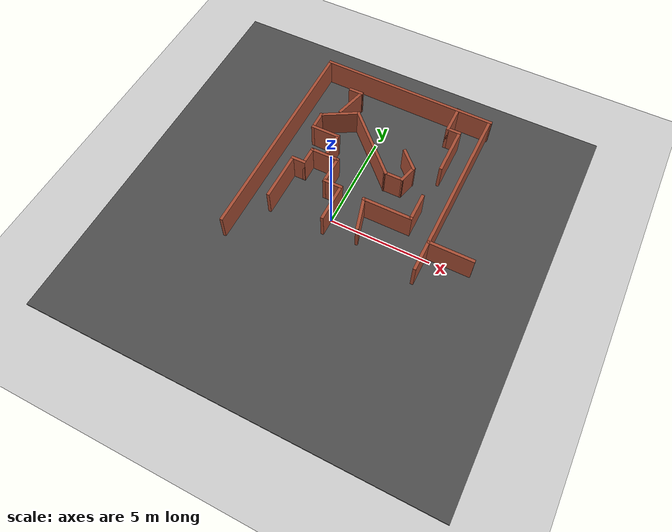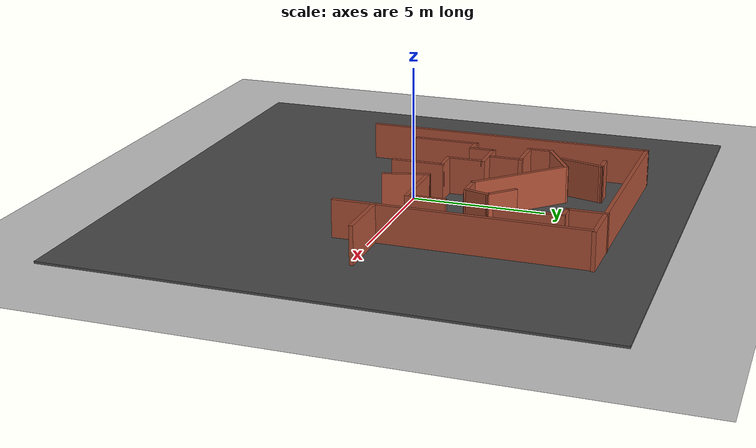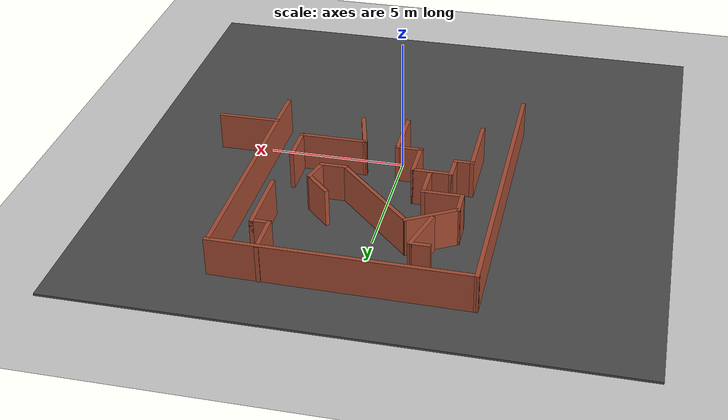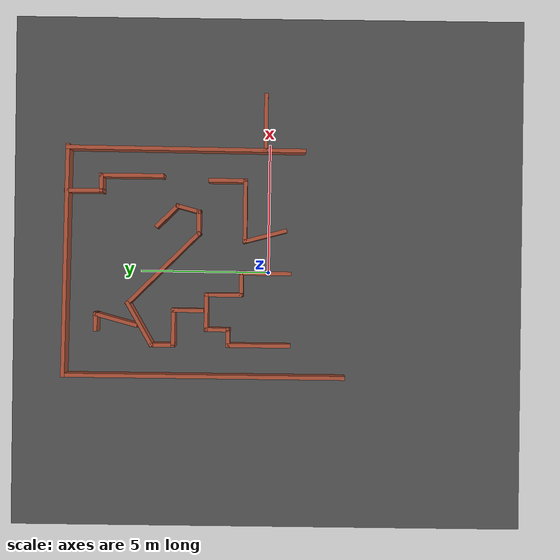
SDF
<sdf version="1.7">
 <world name="expanded_maze_world">
  <model name="ground_plane">
   <static>1</static>
   <link name="link">
    <collision name="collision">
     <geometry><plane><normal>0 0 1</normal><size>100 100</size></plane></geometry>
     <surface>
      <contact><collide_bitmask>65535</collide_bitmask></contact>
      <friction><ode><mu>100</mu><mu2>50</mu2></ode></friction>
     </surface>
    </collision>
    <visual name="visual">
     <cast_shadows>0</cast_shadows>
     <geometry><plane><normal>0 0 1</normal><size>100 100</size></plane></geometry>
     <material>
      <script><uri>file://media/materials/scripts/gazebo.material</uri><name>Gazebo/Grey</name></script>
     </material>
    </visual>
   </link>
  </model>
  <model name="ground_plane">
   <static>1</static>
   <link name="link">
    <collision name="collision">
     <geometry><plane><normal>0 0 1</normal><size>100 100</size></plane></geometry>
     <surface>
      <contact><collide_bitmask>65535</collide_bitmask></contact>
      <friction><ode><mu>100</mu><mu2>50</mu2></ode></friction>
     </surface>
    </collision>
    <visual name="visual">
     <cast_shadows>0</cast_shadows>
     <geometry><plane><normal>0 0 1</normal><size>100 100</size></plane></geometry>
     <material>
      <script><uri>file://media/materials/scripts/gazebo.material</uri><name>Gazebo/Grey</name></script>
     </material>
    </visual>
   </link>
  </model>
  <model name="Search">
   <link name="Wall_23">
    <pose>3.35084 2.83731 0 0 -0 1.56494</pose>
    <visual name="Wall_23_Visual">
     <pose>0 0 1.25 0 -0 0</pose>
     <geometry><box><size>9.28615 0.15 2.5</size></box></geometry>
     <material>
      <script><uri>file://media/materials/scripts/gazebo.material</uri><name>Gazebo/Bricks</name></script>
      <ambient>1 1 1 1</ambient>
      <shader type="pixel"/>
     </material>
     <meta><layer>0</layer></meta>
    </visual>
    <collision name="Wall_23_Collision">
     <pose>0 0 1.25 0 -0 0</pose>
     <geometry><box><size>9.28615 0.15 2.5</size></box></geometry>
     <surface>
      <friction>
       <ode><mu>1</mu><mu2>1</mu2><fdir1>0 0 0</fdir1><slip1>0</slip1><slip2>0</slip2></ode>
       <torsional>
        <coefficient>1</coefficient>
        <patch_radius>0</patch_radius>
        <surface_radius>0</surface_radius>
        <use_patch_radius>1</use_patch_radius>
        <ode><slip>0</slip></ode>
       </torsional>
      </friction>
      <bounce><restitution_coefficient>0</restitution_coefficient><threshold>1e+06</threshold></bounce>
      <contact>
       <collide_without_contact>0</collide_without_contact>
       <collide_without_contact_bitmask>1</collide_without_contact_bitmask>
       <collide_bitmask>1</collide_bitmask>
       <ode>
        <soft_cfm>0</soft_cfm>
        <soft_erp>0.2</soft_erp>
        <kp>1e+13</kp>
        <kd>1</kd>
        <max_vel>0.01</max_vel>
        <min_depth>0</min_depth>
       </ode>
       <bullet>
        <split_impulse>1</split_impulse>
        <split_impulse_penetration_threshold>-0.01</split_impulse_penetration_threshold>
        <soft_cfm>0</soft_cfm>
        <soft_erp>0.2</soft_erp>
        <kp>1e+13</kp>
        <kd>1</kd>
       </bullet>
      </contact>
     </surface>
    </collision>
   </link>
   <link name="Wall_24">
    <pose>-1.0119 7.4588 0 0 -0 3.12955</pose>
    <visual name="Wall_24_Visual">
     <pose>0 0 1.25 0 -0 0</pose>
     <geometry><box><size>9.03663 0.15 2.5</size></box></geometry>
     <material>
      <script><uri>file://media/materials/scripts/gazebo.material</uri><name>Gazebo/Bricks</name></script>
      <ambient>1 1 1 1</ambient>
      <shader type="pixel"/>
     </material>
     <meta><layer>0</layer></meta>
    </visual>
    <collision name="Wall_24_Collision">
     <pose>0 0 1.25 0 -0 0</pose>
     <geometry><box><size>9.03663 0.15 2.5</size></box></geometry>
     <surface>
      <friction>
       <ode><mu>1</mu><mu2>1</mu2><fdir1>0 0 0</fdir1><slip1>0</slip1><slip2>0</slip2></ode>
       <torsional>
        <coefficient>1</coefficient>
        <patch_radius>0</patch_radius>
        <surface_radius>0</surface_radius>
        <use_patch_radius>1</use_patch_radius>
        <ode><slip>0</slip></ode>
       </torsional>
      </friction>
      <bounce><restitution_coefficient>0</restitution_coefficient><threshold>1e+06</threshold></bounce>
      <contact>
       <collide_without_contact>0</collide_without_contact>
       <collide_without_contact_bitmask>1</collide_without_contact_bitmask>
       <collide_bitmask>1</collide_bitmask>
       <ode>
        <soft_cfm>0</soft_cfm>
        <soft_erp>0.2</soft_erp>
        <kp>1e+13</kp>
        <kd>1</kd>
        <max_vel>0.01</max_vel>
        <min_depth>0</min_depth>
       </ode>
       <bullet>
        <split_impulse>1</split_impulse>
        <split_impulse_penetration_threshold>-0.01</split_impulse_penetration_threshold>
        <soft_cfm>0</soft_cfm>
        <soft_erp>0.2</soft_erp>
        <kp>1e+13</kp>
        <kd>1</kd>
       </bullet>
      </contact>
     </surface>
    </collision>
   </link>
   <link name="Wall_25">
    <pose>-5.45489 2.08731 0 0 0 -1.5708</pose>
    <visual name="Wall_25_Visual">
     <pose>0 0 1.25 0 -0 0</pose>
     <geometry><box><size>11 0.15 2.5</size></box></geometry>
     <material>
      <script><uri>file://media/materials/scripts/gazebo.material</uri><name>Gazebo/Bricks</name></script>
      <ambient>1 1 1 1</ambient>
      <shader type="pixel"/>
     </material>
     <meta><layer>0</layer></meta>
    </visual>
    <collision name="Wall_25_Collision">
     <pose>0 0 1.25 0 -0 0</pose>
     <geometry><box><size>11 0.15 2.5</size></box></geometry>
     <surface>
      <friction>
       <ode><mu>1</mu><mu2>1</mu2><fdir1>0 0 0</fdir1><slip1>0</slip1><slip2>0</slip2></ode>
       <torsional>
        <coefficient>1</coefficient>
        <patch_radius>0</patch_radius>
        <surface_radius>0</surface_radius>
        <use_patch_radius>1</use_patch_radius>
        <ode><slip>0</slip></ode>
       </torsional>
      </friction>
      <bounce><restitution_coefficient>0</restitution_coefficient><threshold>1e+06</threshold></bounce>
      <contact>
       <collide_without_contact>0</collide_without_contact>
       <collide_without_contact_bitmask>1</collide_without_contact_bitmask>
       <collide_bitmask>1</collide_bitmask>
       <ode>
        <soft_cfm>0</soft_cfm>
        <soft_erp>0.2</soft_erp>
        <kp>1e+13</kp>
        <kd>1</kd>
        <max_vel>0.01</max_vel>
        <min_depth>0</min_depth>
       </ode>
       <bullet>
        <split_impulse>1</split_impulse>
        <split_impulse_penetration_threshold>-0.01</split_impulse_penetration_threshold>
        <soft_cfm>0</soft_cfm>
        <soft_erp>0.2</soft_erp>
        <kp>1e+13</kp>
        <kd>1</kd>
       </bullet>
      </contact>
     </surface>
    </collision>
   </link>
   <link name="Wall_28">
    <pose>4.41155 -0.253683 0 0 -0 0</pose>
    <visual name="Wall_28_Visual">
     <pose>0 0 1.25 0 -0 0</pose>
     <geometry><box><size>2.25 0.15 2.5</size></box></geometry>
     <material>
      <script><uri>file://media/materials/scripts/gazebo.material</uri><name>Gazebo/Bricks</name></script>
      <ambient>1 1 1 1</ambient>
      <shader type="pixel"/>
     </material>
     <meta><layer>0</layer></meta>
    </visual>
    <collision name="Wall_28_Collision">
     <pose>0 0 1.25 0 -0 0</pose>
     <geometry><box><size>2.25 0.15 2.5</size></box></geometry>
     <surface>
      <friction>
       <ode><mu>1</mu><mu2>1</mu2><fdir1>0 0 0</fdir1><slip1>0</slip1><slip2>0</slip2></ode>
       <torsional>
        <coefficient>1</coefficient>
        <patch_radius>0</patch_radius>
        <surface_radius>0</surface_radius>
        <use_patch_radius>1</use_patch_radius>
        <ode><slip>0</slip></ode>
       </torsional>
      </friction>
      <bounce><restitution_coefficient>0</restitution_coefficient><threshold>1e+06</threshold></bounce>
      <contact>
       <collide_without_contact>0</collide_without_contact>
       <collide_without_contact_bitmask>1</collide_without_contact_bitmask>
       <collide_bitmask>1</collide_bitmask>
       <ode>
        <soft_cfm>0</soft_cfm>
        <soft_erp>0.2</soft_erp>
        <kp>1e+13</kp>
        <kd>1</kd>
        <max_vel>0.01</max_vel>
        <min_depth>0</min_depth>
       </ode>
       <bullet>
        <split_impulse>1</split_impulse>
        <split_impulse_penetration_threshold>-0.01</split_impulse_penetration_threshold>
        <soft_cfm>0</soft_cfm>
        <soft_erp>0.2</soft_erp>
        <kp>1e+13</kp>
        <kd>1</kd>
       </bullet>
      </contact>
     </surface>
    </collision>
   </link>
   <link name="Wall_30">
    <pose>-4.2358 -0.041728 0 0 -0 1.5708</pose>
    <visual name="Wall_30_Visual">
     <pose>0 0 1.25 0 -0 0</pose>
     <geometry><box><size>2.5 0.15 2.5</size></box></geometry>
     <material>
      <script><uri>file://media/materials/scripts/gazebo.material</uri><name>Gazebo/Bricks</name></script>
      <ambient>1 1 1 1</ambient>
      <shader type="pixel"/>
     </material>
     <meta><layer>0</layer></meta>
    </visual>
    <collision name="Wall_30_Collision">
     <pose>0 0 1.25 0 -0 0</pose>
     <geometry><box><size>2.5 0.15 2.5</size></box></geometry>
     <surface>
      <friction>
       <ode><mu>1</mu><mu2>1</mu2><fdir1>0 0 0</fdir1><slip1>0</slip1><slip2>0</slip2></ode>
       <torsional>
        <coefficient>1</coefficient>
        <patch_radius>0</patch_radius>
        <surface_radius>0</surface_radius>
        <use_patch_radius>1</use_patch_radius>
        <ode><slip>0</slip></ode>
       </torsional>
      </friction>
      <bounce><restitution_coefficient>0</restitution_coefficient><threshold>1e+06</threshold></bounce>
      <contact>
       <collide_without_contact>0</collide_without_contact>
       <collide_without_contact_bitmask>1</collide_without_contact_bitmask>
       <collide_bitmask>1</collide_bitmask>
       <ode>
        <soft_cfm>0</soft_cfm>
        <soft_erp>0.2</soft_erp>
        <kp>1e+13</kp>
        <kd>1</kd>
        <max_vel>0.01</max_vel>
        <min_depth>0</min_depth>
       </ode>
       <bullet>
        <split_impulse>1</split_impulse>
        <split_impulse_penetration_threshold>-0.01</split_impulse_penetration_threshold>
        <soft_cfm>0</soft_cfm>
        <soft_erp>0.2</soft_erp>
        <kp>1e+13</kp>
        <kd>1</kd>
       </bullet>
      </contact>
     </surface>
    </collision>
   </link>
   <link name="Wall_31">
    <pose>-3.9358 1.13327 0 0 -0 0</pose>
    <visual name="Wall_31_Visual">
     <pose>0 0 1.25 0 -0 0</pose>
     <geometry><box><size>0.75 0.15 2.5</size></box></geometry>
     <material>
      <script><uri>file://media/materials/scripts/gazebo.material</uri><name>Gazebo/Bricks</name></script>
      <ambient>1 1 1 1</ambient>
      <shader type="pixel"/>
     </material>
     <meta><layer>0</layer></meta>
    </visual>
    <collision name="Wall_31_Collision">
     <pose>0 0 1.25 0 -0 0</pose>
     <geometry><box><size>0.75 0.15 2.5</size></box></geometry>
     <surface>
      <friction>
       <ode><mu>1</mu><mu2>1</mu2><fdir1>0 0 0</fdir1><slip1>0</slip1><slip2>0</slip2></ode>
       <torsional>
        <coefficient>1</coefficient>
        <patch_radius>0</patch_radius>
        <surface_radius>0</surface_radius>
        <use_patch_radius>1</use_patch_radius>
        <ode><slip>0</slip></ode>
       </torsional>
      </friction>
      <bounce><restitution_coefficient>0</restitution_coefficient><threshold>1e+06</threshold></bounce>
      <contact>
       <collide_without_contact>0</collide_without_contact>
       <collide_without_contact_bitmask>1</collide_without_contact_bitmask>
       <collide_bitmask>1</collide_bitmask>
       <ode>
        <soft_cfm>0</soft_cfm>
        <soft_erp>0.2</soft_erp>
        <kp>1e+13</kp>
        <kd>1</kd>
        <max_vel>0.01</max_vel>
        <min_depth>0</min_depth>
       </ode>
       <bullet>
        <split_impulse>1</split_impulse>
        <split_impulse_penetration_threshold>-0.01</split_impulse_penetration_threshold>
        <soft_cfm>0</soft_cfm>
        <soft_erp>0.2</soft_erp>
        <kp>1e+13</kp>
        <kd>1</kd>
       </bullet>
      </contact>
     </surface>
    </collision>
   </link>
   <link name="Wall_32">
    <pose>-3.6358 1.55827 0 0 -0 1.5708</pose>
    <visual name="Wall_32_Visual">
     <pose>0 0 1.25 0 -0 0</pose>
     <geometry><box><size>1 0.15 2.5</size></box></geometry>
     <material>
      <script><uri>file://media/materials/scripts/gazebo.material</uri><name>Gazebo/Bricks</name></script>
      <ambient>1 1 1 1</ambient>
      <shader type="pixel"/>
     </material>
     <meta><layer>0</layer></meta>
    </visual>
    <collision name="Wall_32_Collision">
     <pose>0 0 1.25 0 -0 0</pose>
     <geometry><box><size>1 0.15 2.5</size></box></geometry>
     <surface>
      <friction>
       <ode><mu>1</mu><mu2>1</mu2><fdir1>0 0 0</fdir1><slip1>0</slip1><slip2>0</slip2></ode>
       <torsional>
        <coefficient>1</coefficient>
        <patch_radius>0</patch_radius>
        <surface_radius>0</surface_radius>
        <use_patch_radius>1</use_patch_radius>
        <ode><slip>0</slip></ode>
       </torsional>
      </friction>
      <bounce><restitution_coefficient>0</restitution_coefficient><threshold>1e+06</threshold></bounce>
      <contact>
       <collide_without_contact>0</collide_without_contact>
       <collide_without_contact_bitmask>1</collide_without_contact_bitmask>
       <collide_bitmask>1</collide_bitmask>
       <ode>
        <soft_cfm>0</soft_cfm>
        <soft_erp>0.2</soft_erp>
        <kp>1e+13</kp>
        <kd>1</kd>
        <max_vel>0.01</max_vel>
        <min_depth>0</min_depth>
       </ode>
       <bullet>
        <split_impulse>1</split_impulse>
        <split_impulse_penetration_threshold>-0.01</split_impulse_penetration_threshold>
        <soft_cfm>0</soft_cfm>
        <soft_erp>0.2</soft_erp>
        <kp>1e+13</kp>
        <kd>1</kd>
       </bullet>
      </contact>
     </surface>
    </collision>
   </link>
   <link name="Wall_33">
    <pose>-2.9608 1.98327 0 0 -0 0</pose>
    <visual name="Wall_33_Visual">
     <pose>0 0 1.25 0 -0 0</pose>
     <geometry><box><size>1.5 0.15 2.5</size></box></geometry>
     <material>
      <script><uri>file://media/materials/scripts/gazebo.material</uri><name>Gazebo/Bricks</name></script>
      <ambient>1 1 1 1</ambient>
      <shader type="pixel"/>
     </material>
     <meta><layer>0</layer></meta>
    </visual>
    <collision name="Wall_33_Collision">
     <pose>0 0 1.25 0 -0 0</pose>
     <geometry><box><size>1.5 0.15 2.5</size></box></geometry>
     <surface>
      <friction>
       <ode><mu>1</mu><mu2>1</mu2><fdir1>0 0 0</fdir1><slip1>0</slip1><slip2>0</slip2></ode>
       <torsional>
        <coefficient>1</coefficient>
        <patch_radius>0</patch_radius>
        <surface_radius>0</surface_radius>
        <use_patch_radius>1</use_patch_radius>
        <ode><slip>0</slip></ode>
       </torsional>
      </friction>
      <bounce><restitution_coefficient>0</restitution_coefficient><threshold>1e+06</threshold></bounce>
      <contact>
       <collide_without_contact>0</collide_without_contact>
       <collide_without_contact_bitmask>1</collide_without_contact_bitmask>
       <collide_bitmask>1</collide_bitmask>
       <ode>
        <soft_cfm>0</soft_cfm>
        <soft_erp>0.2</soft_erp>
        <kp>1e+13</kp>
        <kd>1</kd>
        <max_vel>0.01</max_vel>
        <min_depth>0</min_depth>
       </ode>
       <bullet>
        <split_impulse>1</split_impulse>
        <split_impulse_penetration_threshold>-0.01</split_impulse_penetration_threshold>
        <soft_cfm>0</soft_cfm>
        <soft_erp>0.2</soft_erp>
        <kp>1e+13</kp>
        <kd>1</kd>
       </bullet>
      </contact>
     </surface>
    </collision>
   </link>
   <link name="Wall_34">
    <pose>-2.2858 1.30827 0 0 0 -1.5708</pose>
    <visual name="Wall_34_Visual">
     <pose>0 0 1.25 0 -0 0</pose>
     <geometry><box><size>1.5 0.15 2.5</size></box></geometry>
     <material>
      <script><uri>file://media/materials/scripts/gazebo.material</uri><name>Gazebo/Bricks</name></script>
      <ambient>1 1 1 1</ambient>
      <shader type="pixel"/>
     </material>
     <meta><layer>0</layer></meta>
    </visual>
    <collision name="Wall_34_Collision">
     <pose>0 0 1.25 0 -0 0</pose>
     <geometry><box><size>1.5 0.15 2.5</size></box></geometry>
     <surface>
      <friction>
       <ode><mu>1</mu><mu2>1</mu2><fdir1>0 0 0</fdir1><slip1>0</slip1><slip2>0</slip2></ode>
       <torsional>
        <coefficient>1</coefficient>
        <patch_radius>0</patch_radius>
        <surface_radius>0</surface_radius>
        <use_patch_radius>1</use_patch_radius>
        <ode><slip>0</slip></ode>
       </torsional>
      </friction>
      <bounce><restitution_coefficient>0</restitution_coefficient><threshold>1e+06</threshold></bounce>
      <contact>
       <collide_without_contact>0</collide_without_contact>
       <collide_without_contact_bitmask>1</collide_without_contact_bitmask>
       <collide_bitmask>1</collide_bitmask>
       <ode>
        <soft_cfm>0</soft_cfm>
        <soft_erp>0.2</soft_erp>
        <kp>1e+13</kp>
        <kd>1</kd>
        <max_vel>0.01</max_vel>
        <min_depth>0</min_depth>
       </ode>
       <bullet>
        <split_impulse>1</split_impulse>
        <split_impulse_penetration_threshold>-0.01</split_impulse_penetration_threshold>
        <soft_cfm>0</soft_cfm>
        <soft_erp>0.2</soft_erp>
        <kp>1e+13</kp>
        <kd>1</kd>
       </bullet>
      </contact>
     </surface>
    </collision>
   </link>
   <link name="Wall_35">
    <pose>-1.8608 0.633272 0 0 -0 0</pose>
    <visual name="Wall_35_Visual">
     <pose>0 0 1.25 0 -0 0</pose>
     <geometry><box><size>1 0.15 2.5</size></box></geometry>
     <material>
      <script><uri>file://media/materials/scripts/gazebo.material</uri><name>Gazebo/Bricks</name></script>
      <ambient>1 1 1 1</ambient>
      <shader type="pixel"/>
     </material>
     <meta><layer>0</layer></meta>
    </visual>
    <collision name="Wall_35_Collision">
     <pose>0 0 1.25 0 -0 0</pose>
     <geometry><box><size>1 0.15 2.5</size></box></geometry>
     <surface>
      <friction>
       <ode><mu>1</mu><mu2>1</mu2><fdir1>0 0 0</fdir1><slip1>0</slip1><slip2>0</slip2></ode>
       <torsional>
        <coefficient>1</coefficient>
        <patch_radius>0</patch_radius>
        <surface_radius>0</surface_radius>
        <use_patch_radius>1</use_patch_radius>
        <ode><slip>0</slip></ode>
       </torsional>
      </friction>
      <bounce><restitution_coefficient>0</restitution_coefficient><threshold>1e+06</threshold></bounce>
      <contact>
       <collide_without_contact>0</collide_without_contact>
       <collide_without_contact_bitmask>1</collide_without_contact_bitmask>
       <collide_bitmask>1</collide_bitmask>
       <ode>
        <soft_cfm>0</soft_cfm>
        <soft_erp>0.2</soft_erp>
        <kp>1e+13</kp>
        <kd>1</kd>
        <max_vel>0.01</max_vel>
        <min_depth>0</min_depth>
       </ode>
       <bullet>
        <split_impulse>1</split_impulse>
        <split_impulse_penetration_threshold>-0.01</split_impulse_penetration_threshold>
        <soft_cfm>0</soft_cfm>
        <soft_erp>0.2</soft_erp>
        <kp>1e+13</kp>
        <kd>1</kd>
       </bullet>
      </contact>
     </surface>
    </collision>
   </link>
   <link name="Wall_36">
    <pose>-1.4358 -0.291728 0 0 0 -1.5708</pose>
    <visual name="Wall_36_Visual">
     <pose>0 0 1.25 0 -0 0</pose>
     <geometry><box><size>2 0.15 2.5</size></box></geometry>
     <material>
      <script><uri>file://media/materials/scripts/gazebo.material</uri><name>Gazebo/Bricks</name></script>
      <ambient>1 1 1 1</ambient>
      <shader type="pixel"/>
     </material>
     <meta><layer>0</layer></meta>
    </visual>
    <collision name="Wall_36_Collision">
     <pose>0 0 1.25 0 -0 0</pose>
     <geometry><box><size>2 0.15 2.5</size></box></geometry>
     <surface>
      <friction>
       <ode><mu>1</mu><mu2>1</mu2><fdir1>0 0 0</fdir1><slip1>0</slip1><slip2>0</slip2></ode>
       <torsional>
        <coefficient>1</coefficient>
        <patch_radius>0</patch_radius>
        <surface_radius>0</surface_radius>
        <use_patch_radius>1</use_patch_radius>
        <ode><slip>0</slip></ode>
       </torsional>
      </friction>
      <bounce><restitution_coefficient>0</restitution_coefficient><threshold>1e+06</threshold></bounce>
      <contact>
       <collide_without_contact>0</collide_without_contact>
       <collide_without_contact_bitmask>1</collide_without_contact_bitmask>
       <collide_bitmask>1</collide_bitmask>
       <ode>
        <soft_cfm>0</soft_cfm>
        <soft_erp>0.2</soft_erp>
        <kp>1e+13</kp>
        <kd>1</kd>
        <max_vel>0.01</max_vel>
        <min_depth>0</min_depth>
       </ode>
       <bullet>
        <split_impulse>1</split_impulse>
        <split_impulse_penetration_threshold>-0.01</split_impulse_penetration_threshold>
        <soft_cfm>0</soft_cfm>
        <soft_erp>0.2</soft_erp>
        <kp>1e+13</kp>
        <kd>1</kd>
       </bullet>
      </contact>
     </surface>
    </collision>
   </link>
   <link name="Wall_40">
    <pose>-2.89824 2.70393 0 0 -0 1.5708</pose>
    <visual name="Wall_40_Visual">
     <pose>0 0 1.25 0 -0 0</pose>
     <geometry><box><size>1.25 0.15 2.5</size></box></geometry>
     <material>
      <script><uri>file://media/materials/scripts/gazebo.material</uri><name>Gazebo/Bricks</name></script>
      <ambient>1 1 1 1</ambient>
      <shader type="pixel"/>
     </material>
     <meta><layer>0</layer></meta>
    </visual>
    <collision name="Wall_40_Collision">
     <pose>0 0 1.25 0 -0 0</pose>
     <geometry><box><size>1.25 0.15 2.5</size></box></geometry>
     <surface>
      <friction>
       <ode><mu>1</mu><mu2>1</mu2><fdir1>0 0 0</fdir1><slip1>0</slip1><slip2>0</slip2></ode>
       <torsional>
        <coefficient>1</coefficient>
        <patch_radius>0</patch_radius>
        <surface_radius>0</surface_radius>
        <use_patch_radius>1</use_patch_radius>
        <ode><slip>0</slip></ode>
       </torsional>
      </friction>
      <bounce><restitution_coefficient>0</restitution_coefficient><threshold>1e+06</threshold></bounce>
      <contact>
       <collide_without_contact>0</collide_without_contact>
       <collide_without_contact_bitmask>1</collide_without_contact_bitmask>
       <collide_bitmask>1</collide_bitmask>
       <ode>
        <soft_cfm>0</soft_cfm>
        <soft_erp>0.2</soft_erp>
        <kp>1e+13</kp>
        <kd>1</kd>
        <max_vel>0.01</max_vel>
        <min_depth>0</min_depth>
       </ode>
       <bullet>
        <split_impulse>1</split_impulse>
        <split_impulse_penetration_threshold>-0.01</split_impulse_penetration_threshold>
        <soft_cfm>0</soft_cfm>
        <soft_erp>0.2</soft_erp>
        <kp>1e+13</kp>
        <kd>1</kd>
       </bullet>
      </contact>
     </surface>
    </collision>
   </link>
   <link name="Wall_41">
    <pose>-3.57324 3.25393 0 0 -0 3.14159</pose>
    <visual name="Wall_41_Visual">
     <pose>0 0 1.25 0 -0 0</pose>
     <geometry><box><size>1.5 0.15 2.5</size></box></geometry>
     <material>
      <script><uri>file://media/materials/scripts/gazebo.material</uri><name>Gazebo/Bricks</name></script>
      <ambient>1 1 1 1</ambient>
      <shader type="pixel"/>
     </material>
     <meta><layer>0</layer></meta>
    </visual>
    <collision name="Wall_41_Collision">
     <pose>0 0 1.25 0 -0 0</pose>
     <geometry><box><size>1.5 0.15 2.5</size></box></geometry>
     <surface>
      <friction>
       <ode><mu>1</mu><mu2>1</mu2><fdir1>0 0 0</fdir1><slip1>0</slip1><slip2>0</slip2></ode>
       <torsional>
        <coefficient>1</coefficient>
        <patch_radius>0</patch_radius>
        <surface_radius>0</surface_radius>
        <use_patch_radius>1</use_patch_radius>
        <ode><slip>0</slip></ode>
       </torsional>
      </friction>
      <bounce><restitution_coefficient>0</restitution_coefficient><threshold>1e+06</threshold></bounce>
      <contact>
       <collide_without_contact>0</collide_without_contact>
       <collide_without_contact_bitmask>1</collide_without_contact_bitmask>
       <collide_bitmask>1</collide_bitmask>
       <ode>
        <soft_cfm>0</soft_cfm>
        <soft_erp>0.2</soft_erp>
        <kp>1e+13</kp>
        <kd>1</kd>
        <max_vel>0.01</max_vel>
        <min_depth>0</min_depth>
       </ode>
       <bullet>
        <split_impulse>1</split_impulse>
        <split_impulse_penetration_threshold>-0.01</split_impulse_penetration_threshold>
        <soft_cfm>0</soft_cfm>
        <soft_erp>0.2</soft_erp>
        <kp>1e+13</kp>
        <kd>1</kd>
       </bullet>
      </contact>
     </surface>
    </collision>
   </link>
   <link name="Wall_42">
    <pose>-4.24824 3.67893 0 0 -0 1.5708</pose>
    <visual name="Wall_42_Visual">
     <pose>0 0 1.25 0 -0 0</pose>
     <geometry><box><size>1 0.15 2.5</size></box></geometry>
     <material>
      <script><uri>file://media/materials/scripts/gazebo.material</uri><name>Gazebo/Bricks</name></script>
      <ambient>1 1 1 1</ambient>
      <shader type="pixel"/>
     </material>
     <meta><layer>0</layer></meta>
    </visual>
    <collision name="Wall_42_Collision">
     <pose>0 0 1.25 0 -0 0</pose>
     <geometry><box><size>1 0.15 2.5</size></box></geometry>
     <surface>
      <friction>
       <ode><mu>1</mu><mu2>1</mu2><fdir1>0 0 0</fdir1><slip1>0</slip1><slip2>0</slip2></ode>
       <torsional>
        <coefficient>1</coefficient>
        <patch_radius>0</patch_radius>
        <surface_radius>0</surface_radius>
        <use_patch_radius>1</use_patch_radius>
        <ode><slip>0</slip></ode>
       </torsional>
      </friction>
      <bounce><restitution_coefficient>0</restitution_coefficient><threshold>1e+06</threshold></bounce>
      <contact>
       <collide_without_contact>0</collide_without_contact>
       <collide_without_contact_bitmask>1</collide_without_contact_bitmask>
       <collide_bitmask>1</collide_bitmask>
       <ode>
        <soft_cfm>0</soft_cfm>
        <soft_erp>0.2</soft_erp>
        <kp>1e+13</kp>
        <kd>1</kd>
        <max_vel>0.01</max_vel>
        <min_depth>0</min_depth>
       </ode>
       <bullet>
        <split_impulse>1</split_impulse>
        <split_impulse_penetration_threshold>-0.01</split_impulse_penetration_threshold>
        <soft_cfm>0</soft_cfm>
        <soft_erp>0.2</soft_erp>
        <kp>1e+13</kp>
        <kd>1</kd>
       </bullet>
      </contact>
     </surface>
    </collision>
   </link>
   <link name="Wall_43">
    <pose>-3.44716 4.56643 0 0 -0 0.523599</pose>
    <visual name="Wall_43_Visual">
     <pose>0 0 1.25 0 -0 0</pose>
     <geometry><box><size>2 0.15 2.5</size></box></geometry>
     <material>
      <script><uri>file://media/materials/scripts/gazebo.material</uri><name>Gazebo/Bricks</name></script>
      <ambient>1 1 1 1</ambient>
      <shader type="pixel"/>
     </material>
     <meta><layer>0</layer></meta>
    </visual>
    <collision name="Wall_43_Collision">
     <pose>0 0 1.25 0 -0 0</pose>
     <geometry><box><size>2 0.15 2.5</size></box></geometry>
     <surface>
      <friction>
       <ode><mu>1</mu><mu2>1</mu2><fdir1>0 0 0</fdir1><slip1>0</slip1><slip2>0</slip2></ode>
       <torsional>
        <coefficient>1</coefficient>
        <patch_radius>0</patch_radius>
        <surface_radius>0</surface_radius>
        <use_patch_radius>1</use_patch_radius>
        <ode><slip>0</slip></ode>
       </torsional>
      </friction>
      <bounce><restitution_coefficient>0</restitution_coefficient><threshold>1e+06</threshold></bounce>
      <contact>
       <collide_without_contact>0</collide_without_contact>
       <collide_without_contact_bitmask>1</collide_without_contact_bitmask>
       <collide_bitmask>1</collide_bitmask>
       <ode>
        <soft_cfm>0</soft_cfm>
        <soft_erp>0.2</soft_erp>
        <kp>1e+13</kp>
        <kd>1</kd>
        <max_vel>0.01</max_vel>
        <min_depth>0</min_depth>
       </ode>
       <bullet>
        <split_impulse>1</split_impulse>
        <split_impulse_penetration_threshold>-0.01</split_impulse_penetration_threshold>
        <soft_cfm>0</soft_cfm>
        <soft_erp>0.2</soft_erp>
        <kp>1e+13</kp>
        <kd>1</kd>
       </bullet>
      </contact>
     </surface>
    </collision>
   </link>
   <link name="Wall_44">
    <pose>-1.28491 3.66775 0 0 0 -0.785398</pose>
    <visual name="Wall_44_Visual">
     <pose>0 0 1.25 0 -0 0</pose>
     <geometry><box><size>4 0.15 2.5</size></box></geometry>
     <material>
      <script><uri>file://media/materials/scripts/gazebo.material</uri><name>Gazebo/Bricks</name></script>
      <ambient>1 1 1 1</ambient>
      <shader type="pixel"/>
     </material>
     <meta><layer>0</layer></meta>
    </visual>
    <collision name="Wall_44_Collision">
     <pose>0 0 1.25 0 -0 0</pose>
     <geometry><box><size>4 0.15 2.5</size></box></geometry>
     <surface>
      <friction>
       <ode><mu>1</mu><mu2>1</mu2><fdir1>0 0 0</fdir1><slip1>0</slip1><slip2>0</slip2></ode>
       <torsional>
        <coefficient>1</coefficient>
        <patch_radius>0</patch_radius>
        <surface_radius>0</surface_radius>
        <use_patch_radius>1</use_patch_radius>
        <ode><slip>0</slip></ode>
       </torsional>
      </friction>
      <bounce><restitution_coefficient>0</restitution_coefficient><threshold>1e+06</threshold></bounce>
      <contact>
       <collide_without_contact>0</collide_without_contact>
       <collide_without_contact_bitmask>1</collide_without_contact_bitmask>
       <collide_bitmask>1</collide_bitmask>
       <ode>
        <soft_cfm>0</soft_cfm>
        <soft_erp>0.2</soft_erp>
        <kp>1e+13</kp>
        <kd>1</kd>
        <max_vel>0.01</max_vel>
        <min_depth>0</min_depth>
       </ode>
       <bullet>
        <split_impulse>1</split_impulse>
        <split_impulse_penetration_threshold>-0.01</split_impulse_penetration_threshold>
        <soft_cfm>0</soft_cfm>
        <soft_erp>0.2</soft_erp>
        <kp>1e+13</kp>
        <kd>1</kd>
       </bullet>
      </contact>
     </surface>
    </collision>
   </link>
   <link name="Wall_45">
    <pose>0.501271 2.30657 0 0 -0 0</pose>
    <visual name="Wall_45_Visual">
     <pose>0 0 1.25 0 -0 0</pose>
     <geometry><box><size>1 0.15 2.5</size></box></geometry>
     <material>
      <script><uri>file://media/materials/scripts/gazebo.material</uri><name>Gazebo/Bricks</name></script>
      <ambient>1 1 1 1</ambient>
      <shader type="pixel"/>
     </material>
     <meta><layer>0</layer></meta>
    </visual>
    <collision name="Wall_45_Collision">
     <pose>0 0 1.25 0 -0 0</pose>
     <geometry><box><size>1 0.15 2.5</size></box></geometry>
     <surface>
      <friction>
       <ode><mu>1</mu><mu2>1</mu2><fdir1>0 0 0</fdir1><slip1>0</slip1><slip2>0</slip2></ode>
       <torsional>
        <coefficient>1</coefficient>
        <patch_radius>0</patch_radius>
        <surface_radius>0</surface_radius>
        <use_patch_radius>1</use_patch_radius>
        <ode><slip>0</slip></ode>
       </torsional>
      </friction>
      <bounce><restitution_coefficient>0</restitution_coefficient><threshold>1e+06</threshold></bounce>
      <contact>
       <collide_without_contact>0</collide_without_contact>
       <collide_without_contact_bitmask>1</collide_without_contact_bitmask>
       <collide_bitmask>1</collide_bitmask>
       <ode>
        <soft_cfm>0</soft_cfm>
        <soft_erp>0.2</soft_erp>
        <kp>1e+13</kp>
        <kd>1</kd>
        <max_vel>0.01</max_vel>
        <min_depth>0</min_depth>
       </ode>
       <bullet>
        <split_impulse>1</split_impulse>
        <split_impulse_penetration_threshold>-0.01</split_impulse_penetration_threshold>
        <soft_cfm>0</soft_cfm>
        <soft_erp>0.2</soft_erp>
        <kp>1e+13</kp>
        <kd>1</kd>
       </bullet>
      </contact>
     </surface>
    </collision>
   </link>
   <link name="Wall_46">
    <pose>1.03627 2.71709 0 0 -0 1.309</pose>
    <visual name="Wall_46_Visual">
     <pose>0 0 1.25 0 -0 0</pose>
     <geometry><box><size>1 0.15 2.5</size></box></geometry>
     <material>
      <script><uri>file://media/materials/scripts/gazebo.material</uri><name>Gazebo/Bricks</name></script>
      <ambient>1 1 1 1</ambient>
      <shader type="pixel"/>
     </material>
     <meta><layer>0</layer></meta>
    </visual>
    <collision name="Wall_46_Collision">
     <pose>0 0 1.25 0 -0 0</pose>
     <geometry><box><size>1 0.15 2.5</size></box></geometry>
     <surface>
      <friction>
       <ode><mu>1</mu><mu2>1</mu2><fdir1>0 0 0</fdir1><slip1>0</slip1><slip2>0</slip2></ode>
       <torsional>
        <coefficient>1</coefficient>
        <patch_radius>0</patch_radius>
        <surface_radius>0</surface_radius>
        <use_patch_radius>1</use_patch_radius>
        <ode><slip>0</slip></ode>
       </torsional>
      </friction>
      <bounce><restitution_coefficient>0</restitution_coefficient><threshold>1e+06</threshold></bounce>
      <contact>
       <collide_without_contact>0</collide_without_contact>
       <collide_without_contact_bitmask>1</collide_without_contact_bitmask>
       <collide_bitmask>1</collide_bitmask>
       <ode>
        <soft_cfm>0</soft_cfm>
        <soft_erp>0.2</soft_erp>
        <kp>1e+13</kp>
        <kd>1</kd>
        <max_vel>0.01</max_vel>
        <min_depth>0</min_depth>
       </ode>
       <bullet>
        <split_impulse>1</split_impulse>
        <split_impulse_penetration_threshold>-0.01</split_impulse_penetration_threshold>
        <soft_cfm>0</soft_cfm>
        <soft_erp>0.2</soft_erp>
        <kp>1e+13</kp>
        <kd>1</kd>
       </bullet>
      </contact>
     </surface>
    </collision>
   </link>
   <link name="Wall_47">
    <pose>0.757358 3.51651 0 0 -0 2.35619</pose>
    <visual name="Wall_47_Visual">
     <pose>0 0 1.25 0 -0 0</pose>
     <geometry><box><size>1.25 0.15 2.5</size></box></geometry>
     <material>
      <script><uri>file://media/materials/scripts/gazebo.material</uri><name>Gazebo/Bricks</name></script>
      <ambient>1 1 1 1</ambient>
      <shader type="pixel"/>
     </material>
     <meta><layer>0</layer></meta>
    </visual>
    <collision name="Wall_47_Collision">
     <pose>0 0 1.25 0 -0 0</pose>
     <geometry><box><size>1.25 0.15 2.5</size></box></geometry>
     <surface>
      <friction>
       <ode><mu>1</mu><mu2>1</mu2><fdir1>0 0 0</fdir1><slip1>0</slip1><slip2>0</slip2></ode>
       <torsional>
        <coefficient>1</coefficient>
        <patch_radius>0</patch_radius>
        <surface_radius>0</surface_radius>
        <use_patch_radius>1</use_patch_radius>
        <ode><slip>0</slip></ode>
       </torsional>
      </friction>
      <bounce><restitution_coefficient>0</restitution_coefficient><threshold>1e+06</threshold></bounce>
      <contact>
       <collide_without_contact>0</collide_without_contact>
       <collide_without_contact_bitmask>1</collide_without_contact_bitmask>
       <collide_bitmask>1</collide_bitmask>
       <ode>
        <soft_cfm>0</soft_cfm>
        <soft_erp>0.2</soft_erp>
        <kp>1e+13</kp>
        <kd>1</kd>
        <max_vel>0.01</max_vel>
        <min_depth>0</min_depth>
       </ode>
       <bullet>
        <split_impulse>1</split_impulse>
        <split_impulse_penetration_threshold>-0.01</split_impulse_penetration_threshold>
        <soft_cfm>0</soft_cfm>
        <soft_erp>0.2</soft_erp>
        <kp>1e+13</kp>
        <kd>1</kd>
       </bullet>
      </contact>
     </surface>
    </collision>
   </link>
   <link name="Wall_52">
    <pose>-3.27971 5.49479 0 0 -0 1.309</pose>
    <visual name="Wall_52_Visual">
     <pose>0 0 1.25 0 -0 0</pose>
     <geometry><box><size>1.75 0.15 2.5</size></box></geometry>
     <material>
      <script><uri>file://media/materials/scripts/gazebo.material</uri><name>Gazebo/Bricks</name></script>
      <ambient>1 1 1 1</ambient>
      <shader type="pixel"/>
     </material>
     <meta><layer>0</layer></meta>
    </visual>
    <collision name="Wall_52_Collision">
     <pose>0 0 1.25 0 -0 0</pose>
     <geometry><box><size>1.75 0.15 2.5</size></box></geometry>
     <surface>
      <friction>
       <ode><mu>1</mu><mu2>1</mu2><fdir1>0 0 0</fdir1><slip1>0</slip1><slip2>0</slip2></ode>
       <torsional>
        <coefficient>1</coefficient>
        <patch_radius>0</patch_radius>
        <surface_radius>0</surface_radius>
        <use_patch_radius>1</use_patch_radius>
        <ode><slip>0</slip></ode>
       </torsional>
      </friction>
      <bounce><restitution_coefficient>0</restitution_coefficient><threshold>1e+06</threshold></bounce>
      <contact>
       <collide_without_contact>0</collide_without_contact>
       <collide_without_contact_bitmask>1</collide_without_contact_bitmask>
       <collide_bitmask>1</collide_bitmask>
       <ode>
        <soft_cfm>0</soft_cfm>
        <soft_erp>0.2</soft_erp>
        <kp>1e+13</kp>
        <kd>1</kd>
        <max_vel>0.01</max_vel>
        <min_depth>0</min_depth>
       </ode>
       <bullet>
        <split_impulse>1</split_impulse>
        <split_impulse_penetration_threshold>-0.01</split_impulse_penetration_threshold>
        <soft_cfm>0</soft_cfm>
        <soft_erp>0.2</soft_erp>
        <kp>1e+13</kp>
        <kd>1</kd>
       </bullet>
      </contact>
     </surface>
    </collision>
   </link>
   <link name="Wall_54">
    <pose>-3.37265 6.26753 0 0 -0 3.14159</pose>
    <visual name="Wall_54_Visual">
     <pose>0 0 1.25 0 -0 0</pose>
     <geometry><box><size>0.75 0.15 2.5</size></box></geometry>
     <material>
      <script><uri>file://media/materials/scripts/gazebo.material</uri><name>Gazebo/Bricks</name></script>
      <ambient>1 1 1 1</ambient>
      <shader type="pixel"/>
     </material>
     <meta><layer>0</layer></meta>
    </visual>
    <collision name="Wall_54_Collision">
     <pose>0 0 1.25 0 -0 0</pose>
     <geometry><box><size>0.75 0.15 2.5</size></box></geometry>
     <surface>
      <friction>
       <ode><mu>1</mu><mu2>1</mu2><fdir1>0 0 0</fdir1><slip1>0</slip1><slip2>0</slip2></ode>
       <torsional>
        <coefficient>1</coefficient>
        <patch_radius>0</patch_radius>
        <surface_radius>0</surface_radius>
        <use_patch_radius>1</use_patch_radius>
        <ode><slip>0</slip></ode>
       </torsional>
      </friction>
      <bounce><restitution_coefficient>0</restitution_coefficient><threshold>1e+06</threshold></bounce>
      <contact>
       <collide_without_contact>0</collide_without_contact>
       <collide_without_contact_bitmask>1</collide_without_contact_bitmask>
       <collide_bitmask>1</collide_bitmask>
       <ode>
        <soft_cfm>0</soft_cfm>
        <soft_erp>0.2</soft_erp>
        <kp>1e+13</kp>
        <kd>1</kd>
        <max_vel>0.01</max_vel>
        <min_depth>0</min_depth>
       </ode>
       <bullet>
        <split_impulse>1</split_impulse>
        <split_impulse_penetration_threshold>-0.01</split_impulse_penetration_threshold>
        <soft_cfm>0</soft_cfm>
        <soft_erp>0.2</soft_erp>
        <kp>1e+13</kp>
        <kd>1</kd>
       </bullet>
      </contact>
     </surface>
    </collision>
   </link>
   <link name="Wall_68">
    <pose>0.006991 -0.256592 0 0 -0 1.8326</pose>
    <visual name="Wall_68_Visual">
     <pose>0 0 1.25 0 -0 0</pose>
     <geometry><box><size>1.75 0.15 2.5</size></box></geometry>
     <material>
      <script><uri>file://media/materials/scripts/gazebo.material</uri><name>Gazebo/Bricks</name></script>
      <ambient>1 1 1 1</ambient>
      <shader type="pixel"/>
     </material>
     <meta><layer>0</layer></meta>
    </visual>
    <collision name="Wall_68_Collision">
     <pose>0 0 1.25 0 -0 0</pose>
     <geometry><box><size>1.75 0.15 2.5</size></box></geometry>
     <surface>
      <friction>
       <ode><mu>1</mu><mu2>1</mu2><fdir1>0 0 0</fdir1><slip1>0</slip1><slip2>0</slip2></ode>
       <torsional>
        <coefficient>1</coefficient>
        <patch_radius>0</patch_radius>
        <surface_radius>0</surface_radius>
        <use_patch_radius>1</use_patch_radius>
        <ode><slip>0</slip></ode>
       </torsional>
      </friction>
      <bounce><restitution_coefficient>0</restitution_coefficient><threshold>1e+06</threshold></bounce>
      <contact>
       <collide_without_contact>0</collide_without_contact>
       <collide_without_contact_bitmask>1</collide_without_contact_bitmask>
       <collide_bitmask>1</collide_bitmask>
       <ode>
        <soft_cfm>0</soft_cfm>
        <soft_erp>0.2</soft_erp>
        <kp>1e+13</kp>
        <kd>1</kd>
        <max_vel>0.01</max_vel>
        <min_depth>0</min_depth>
       </ode>
       <bullet>
        <split_impulse>1</split_impulse>
        <split_impulse_penetration_threshold>-0.01</split_impulse_penetration_threshold>
        <soft_cfm>0</soft_cfm>
        <soft_erp>0.2</soft_erp>
        <kp>1e+13</kp>
        <kd>1</kd>
       </bullet>
      </contact>
     </surface>
    </collision>
   </link>
   <link name="Wall_69">
    <pose>0.974936 0.516149 0 0 -0 0</pose>
    <visual name="Wall_69_Visual">
     <pose>0 0 1.25 0 -0 0</pose>
     <geometry><box><size>2.5 0.15 2.5</size></box></geometry>
     <material>
      <script><uri>file://media/materials/scripts/gazebo.material</uri><name>Gazebo/Bricks</name></script>
      <ambient>1 1 1 1</ambient>
      <shader type="pixel"/>
     </material>
     <meta><layer>0</layer></meta>
    </visual>
    <collision name="Wall_69_Collision">
     <pose>0 0 1.25 0 -0 0</pose>
     <geometry><box><size>2.5 0.15 2.5</size></box></geometry>
     <surface>
      <friction>
       <ode><mu>1</mu><mu2>1</mu2><fdir1>0 0 0</fdir1><slip1>0</slip1><slip2>0</slip2></ode>
       <torsional>
        <coefficient>1</coefficient>
        <patch_radius>0</patch_radius>
        <surface_radius>0</surface_radius>
        <use_patch_radius>1</use_patch_radius>
        <ode><slip>0</slip></ode>
       </torsional>
      </friction>
      <bounce><restitution_coefficient>0</restitution_coefficient><threshold>1e+06</threshold></bounce>
      <contact>
       <collide_without_contact>0</collide_without_contact>
       <collide_without_contact_bitmask>1</collide_without_contact_bitmask>
       <collide_bitmask>1</collide_bitmask>
       <ode>
        <soft_cfm>0</soft_cfm>
        <soft_erp>0.2</soft_erp>
        <kp>1e+13</kp>
        <kd>1</kd>
        <max_vel>0.01</max_vel>
        <min_depth>0</min_depth>
       </ode>
       <bullet>
        <split_impulse>1</split_impulse>
        <split_impulse_penetration_threshold>-0.01</split_impulse_penetration_threshold>
        <soft_cfm>0</soft_cfm>
        <soft_erp>0.2</soft_erp>
        <kp>1e+13</kp>
        <kd>1</kd>
       </bullet>
      </contact>
     </surface>
    </collision>
   </link>
   <link name="Wall_70">
    <pose>2.14994 1.19115 0 0 -0 1.5708</pose>
    <visual name="Wall_70_Visual">
     <pose>0 0 1.25 0 -0 0</pose>
     <geometry><box><size>1.5 0.15 2.5</size></box></geometry>
     <material>
      <script><uri>file://media/materials/scripts/gazebo.material</uri><name>Gazebo/Bricks</name></script>
      <ambient>1 1 1 1</ambient>
      <shader type="pixel"/>
     </material>
     <meta><layer>0</layer></meta>
    </visual>
    <collision name="Wall_70_Collision">
     <pose>0 0 1.25 0 -0 0</pose>
     <geometry><box><size>1.5 0.15 2.5</size></box></geometry>
     <surface>
      <friction>
       <ode><mu>1</mu><mu2>1</mu2><fdir1>0 0 0</fdir1><slip1>0</slip1><slip2>0</slip2></ode>
       <torsional>
        <coefficient>1</coefficient>
        <patch_radius>0</patch_radius>
        <surface_radius>0</surface_radius>
        <use_patch_radius>1</use_patch_radius>
        <ode><slip>0</slip></ode>
       </torsional>
      </friction>
      <bounce><restitution_coefficient>0</restitution_coefficient><threshold>1e+06</threshold></bounce>
      <contact>
       <collide_without_contact>0</collide_without_contact>
       <collide_without_contact_bitmask>1</collide_without_contact_bitmask>
       <collide_bitmask>1</collide_bitmask>
       <ode>
        <soft_cfm>0</soft_cfm>
        <soft_erp>0.2</soft_erp>
        <kp>1e+13</kp>
        <kd>1</kd>
        <max_vel>0.01</max_vel>
        <min_depth>0</min_depth>
       </ode>
       <bullet>
        <split_impulse>1</split_impulse>
        <split_impulse_penetration_threshold>-0.01</split_impulse_penetration_threshold>
        <soft_cfm>0</soft_cfm>
        <soft_erp>0.2</soft_erp>
        <kp>1e+13</kp>
        <kd>1</kd>
       </bullet>
      </contact>
     </surface>
    </collision>
   </link>
   <link name="Wall_72">
    <pose>1.70298 6.77568 0 0 0 -1.5708</pose>
    <visual name="Wall_72_Visual">
     <pose>0 0 1.25 0 -0 0</pose>
     <geometry><box><size>1.5 0.15 2.5</size></box></geometry>
     <material>
      <script><uri>file://media/materials/scripts/gazebo.material</uri><name>Gazebo/Bricks</name></script>
      <ambient>1 1 1 1</ambient>
      <shader type="pixel"/>
     </material>
     <meta><layer>0</layer></meta>
    </visual>
    <collision name="Wall_72_Collision">
     <pose>0 0 1.25 0 -0 0</pose>
     <geometry><box><size>1.5 0.15 2.5</size></box></geometry>
     <surface>
      <friction>
       <ode><mu>1</mu><mu2>1</mu2><fdir1>0 0 0</fdir1><slip1>0</slip1><slip2>0</slip2></ode>
       <torsional>
        <coefficient>1</coefficient>
        <patch_radius>0</patch_radius>
        <surface_radius>0</surface_radius>
        <use_patch_radius>1</use_patch_radius>
        <ode><slip>0</slip></ode>
       </torsional>
      </friction>
      <bounce><restitution_coefficient>0</restitution_coefficient><threshold>1e+06</threshold></bounce>
      <contact>
       <collide_without_contact>0</collide_without_contact>
       <collide_without_contact_bitmask>1</collide_without_contact_bitmask>
       <collide_bitmask>1</collide_bitmask>
       <ode>
        <soft_cfm>0</soft_cfm>
        <soft_erp>0.2</soft_erp>
        <kp>1e+13</kp>
        <kd>1</kd>
        <max_vel>0.01</max_vel>
        <min_depth>0</min_depth>
       </ode>
       <bullet>
        <split_impulse>1</split_impulse>
        <split_impulse_penetration_threshold>-0.01</split_impulse_penetration_threshold>
        <soft_cfm>0</soft_cfm>
        <soft_erp>0.2</soft_erp>
        <kp>1e+13</kp>
        <kd>1</kd>
       </bullet>
      </contact>
     </surface>
    </collision>
   </link>
   <link name="Wall_73">
    <pose>2.00298 6.10068 0 0 -0 0</pose>
    <visual name="Wall_73_Visual">
     <pose>0 0 1.25 0 -0 0</pose>
     <geometry><box><size>0.75 0.15 2.5</size></box></geometry>
     <material>
      <script><uri>file://media/materials/scripts/gazebo.material</uri><name>Gazebo/Bricks</name></script>
      <ambient>1 1 1 1</ambient>
      <shader type="pixel"/>
     </material>
     <meta><layer>0</layer></meta>
    </visual>
    <collision name="Wall_73_Collision">
     <pose>0 0 1.25 0 -0 0</pose>
     <geometry><box><size>0.75 0.15 2.5</size></box></geometry>
     <surface>
      <friction>
       <ode><mu>1</mu><mu2>1</mu2><fdir1>0 0 0</fdir1><slip1>0</slip1><slip2>0</slip2></ode>
       <torsional>
        <coefficient>1</coefficient>
        <patch_radius>0</patch_radius>
        <surface_radius>0</surface_radius>
        <use_patch_radius>1</use_patch_radius>
        <ode><slip>0</slip></ode>
       </torsional>
      </friction>
      <bounce><restitution_coefficient>0</restitution_coefficient><threshold>1e+06</threshold></bounce>
      <contact>
       <collide_without_contact>0</collide_without_contact>
       <collide_without_contact_bitmask>1</collide_without_contact_bitmask>
       <collide_bitmask>1</collide_bitmask>
       <ode>
        <soft_cfm>0</soft_cfm>
        <soft_erp>0.2</soft_erp>
        <kp>1e+13</kp>
        <kd>1</kd>
        <max_vel>0.01</max_vel>
        <min_depth>0</min_depth>
       </ode>
       <bullet>
        <split_impulse>1</split_impulse>
        <split_impulse_penetration_threshold>-0.01</split_impulse_penetration_threshold>
        <soft_cfm>0</soft_cfm>
        <soft_erp>0.2</soft_erp>
        <kp>1e+13</kp>
        <kd>1</kd>
       </bullet>
      </contact>
     </surface>
    </collision>
   </link>
   <link name="Wall_74">
    <pose>2.30298 4.92568 0 0 0 -1.5708</pose>
    <visual name="Wall_74_Visual">
     <pose>0 0 1.25 0 -0 0</pose>
     <geometry><box><size>2.5 0.15 2.5</size></box></geometry>
     <material>
      <script><uri>file://media/materials/scripts/gazebo.material</uri><name>Gazebo/Bricks</name></script>
      <ambient>1 1 1 1</ambient>
      <shader type="pixel"/>
     </material>
     <meta><layer>0</layer></meta>
    </visual>
    <collision name="Wall_74_Collision">
     <pose>0 0 1.25 0 -0 0</pose>
     <geometry><box><size>2.5 0.15 2.5</size></box></geometry>
     <surface>
      <friction>
       <ode><mu>1</mu><mu2>1</mu2><fdir1>0 0 0</fdir1><slip1>0</slip1><slip2>0</slip2></ode>
       <torsional>
        <coefficient>1</coefficient>
        <patch_radius>0</patch_radius>
        <surface_radius>0</surface_radius>
        <use_patch_radius>1</use_patch_radius>
        <ode><slip>0</slip></ode>
       </torsional>
      </friction>
      <bounce><restitution_coefficient>0</restitution_coefficient><threshold>1e+06</threshold></bounce>
      <contact>
       <collide_without_contact>0</collide_without_contact>
       <collide_without_contact_bitmask>1</collide_without_contact_bitmask>
       <collide_bitmask>1</collide_bitmask>
       <ode>
        <soft_cfm>0</soft_cfm>
        <soft_erp>0.2</soft_erp>
        <kp>1e+13</kp>
        <kd>1</kd>
        <max_vel>0.01</max_vel>
        <min_depth>0</min_depth>
       </ode>
       <bullet>
        <split_impulse>1</split_impulse>
        <split_impulse_penetration_threshold>-0.01</split_impulse_penetration_threshold>
        <soft_cfm>0</soft_cfm>
        <soft_erp>0.2</soft_erp>
        <kp>1e+13</kp>
        <kd>1</kd>
       </bullet>
      </contact>
     </surface>
    </collision>
   </link>
   <static>1</static>
   <pose>1.39941 0.42073 -1.04492 0 -0 0</pose>
  </model>
  <model name="asphalt_plane_0">
   <static>1</static>
   <link name="link">
    <collision name="collision"><geometry><box><size>20 20 0.1</size></box></geometry></collision>
    <visual name="visual">
     <cast_shadows>0</cast_shadows>
     <geometry><box><size>20 20 0.1</size></box></geometry>
     <material>
      <script>
       <uri>model://asphalt_plane/materials/scripts</uri>
       <uri>model://asphalt_plane/materials/textures</uri>
       <name>vrc/asphalt</name>
      </script>
     </material>
    </visual>
   </link>
   <pose>-0.004874 0.043107 0 0 -0 0</pose>
  </model>
 </world>
</sdf>
